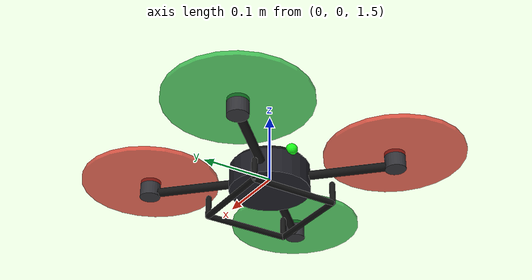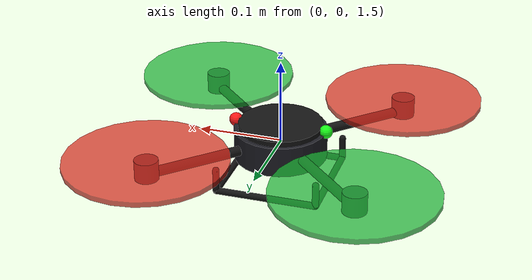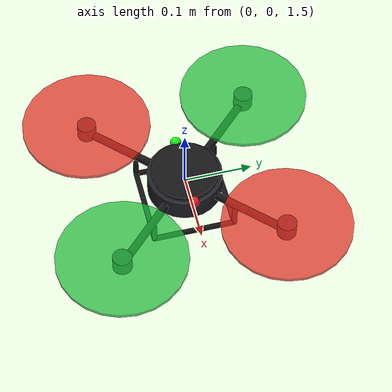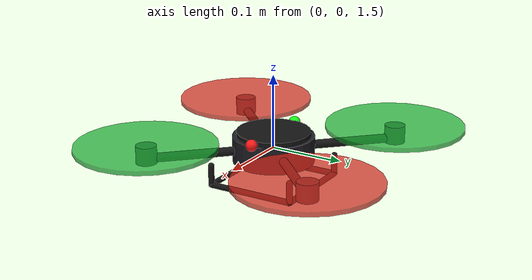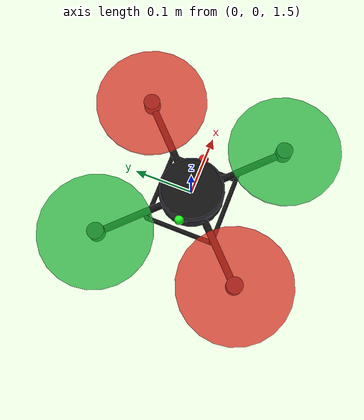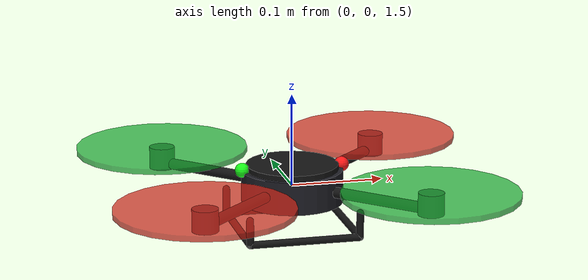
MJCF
<!--
hummingbird.xml — Hummingbird 四旋翼 MuJoCo 模型（真实外观版）

X 型机架，碳纤维臂，电机座，旋翼圆盘
物理参数与 RotorPy 一致：
    mass=0.5kg, Ixx=0.00365, Iyy=0.00368, Izz=0.00703
    k_eta=5.57e-6, k_m=1.36e-7, arm=0.1202m
-->

<mujoco model="hummingbird">

  <compiler angle="radian" autolimits="true"/>

  <option gravity="0 0 -9.81" timestep="0.001" integrator="RK4"/>

  <asset>
    <material name="carbon"    rgba="0.08 0.08 0.08 1"/>
    <material name="body_mat"  rgba="0.12 0.12 0.15 1"/>
    <material name="motor_mat" rgba="0.20 0.20 0.22 1"/>
    <material name="prop_cw"   rgba="0.85 0.15 0.10 0.75"/>
    <material name="prop_ccw"  rgba="0.10 0.70 0.20 0.75"/>
    <material name="led_red"   rgba="1.0  0.1  0.1  1"/>
    <material name="led_green" rgba="0.1  1.0  0.1  1"/>
    <texture type="skybox" file="asset/desert.png" gridsize="3 4" gridlayout=".U..LFRB.D.." />
    <texture name="plane" type="2d" builtin="checker" rgb1=".1 .1 .1" rgb2=".9 .9 .9" width="512" height="512" mark="cross" markrgb=".8 .8 .8" />
    <material name="plane" reflectance="0.3" texture="plane" texrepeat="1 1" texuniform="true" />
  </asset>

  <default>
    <joint damping="0.0005"/>
  </default>

  <worldbody>

    <body name="quadrotor" pos="0 0 1.5">
      <freejoint name="root"/>

      <!-- ── 机体中心（扁平六边形近似） ── -->
      <geom name="body_center" type="cylinder"
            size="0.055 0.018"
            mass="0.328"
            material="body_mat"/>

      <!-- 顶盖（薄圆盘，深色） -->
      <geom name="body_top" type="cylinder"
            size="0.050 0.004" pos="0 0 0.020"
            mass="0.01"
            material="carbon"/>

      <!-- ── 4 根碳纤维臂（X 型，45°布局）── -->
      <!-- M1 右前 (+x+y) -->
      <geom name="arm1" type="capsule" size="0.006"
            fromto="0 0 0  0.1202 0.1202 0"
            mass="0.012" material="carbon"/>
      <!-- M2 右后 (+x-y) -->
      <geom name="arm2" type="capsule" size="0.006"
            fromto="0 0 0  0.1202 -0.1202 0"
            mass="0.012" material="carbon"/>
      <!-- M3 左后 (-x-y) -->
      <geom name="arm3" type="capsule" size="0.006"
            fromto="0 0 0  -0.1202 -0.1202 0"
            mass="0.012" material="carbon"/>
      <!-- M4 左前 (-x+y) -->
      <geom name="arm4" type="capsule" size="0.006"
            fromto="0 0 0  -0.1202 0.1202 0"
            mass="0.012" material="carbon"/>

      <!-- ── 4 个电机座 ── -->
      <geom name="motor1" type="cylinder" size="0.014 0.012"
            pos="0.1202  0.1202 0.006"
            mass="0.015" material="motor_mat"/>
      <geom name="motor2" type="cylinder" size="0.014 0.012"
            pos="0.1202 -0.1202 0.006"
            mass="0.015" material="motor_mat"/>
      <geom name="motor3" type="cylinder" size="0.014 0.012"
            pos="-0.1202 -0.1202 0.006"
            mass="0.015" material="motor_mat"/>
      <geom name="motor4" type="cylinder" size="0.014 0.012"
            pos="-0.1202  0.1202 0.006"
            mass="0.015" material="motor_mat"/>

      <!-- ── 4 个旋翼圆盘（CW红色，CCW绿色）── -->
      <!-- M1 顺时针(CW) 红色 -->
      <geom name="rotor1" type="cylinder" size="0.095 0.003"
            pos="0.1202  0.1202 0.016"
            mass="0.008" material="prop_cw"/>
      <!-- M2 逆时针(CCW) 绿色 -->
      <geom name="rotor2" type="cylinder" size="0.095 0.003"
            pos="0.1202 -0.1202 0.016"
            mass="0.008" material="prop_ccw"/>
      <!-- M3 顺时针(CW) 红色 -->
      <geom name="rotor3" type="cylinder" size="0.095 0.003"
            pos="-0.1202 -0.1202 0.016"
            mass="0.008" material="prop_cw"/>
      <!-- M4 逆时针(CCW) 绿色 -->
      <geom name="rotor4" type="cylinder" size="0.095 0.003"
            pos="-0.1202  0.1202 0.016"
            mass="0.008" material="prop_ccw"/>

      <!-- ── 起落架（4根细支柱）── -->
      <geom name="leg1" type="capsule" size="0.004"
            fromto="0.06  0.06 -0.018   0.06  0.06 -0.045"
            mass="0.003" material="carbon"/>
      <geom name="leg2" type="capsule" size="0.004"
            fromto="0.06 -0.06 -0.018   0.06 -0.06 -0.045"
            mass="0.003" material="carbon"/>
      <geom name="leg3" type="capsule" size="0.004"
            fromto="-0.06 -0.06 -0.018  -0.06 -0.06 -0.045"
            mass="0.003" material="carbon"/>
      <geom name="leg4" type="capsule" size="0.004"
            fromto="-0.06  0.06 -0.018  -0.06  0.06 -0.045"
            mass="0.003" material="carbon"/>
      <!-- 起落架横杆 -->
      <geom name="skid1" type="capsule" size="0.004"
            fromto="0.06 -0.06 -0.045   0.06  0.06 -0.045"
            mass="0.002" material="carbon"/>
      <geom name="skid2" type="capsule" size="0.004"
            fromto="-0.06 -0.06 -0.045  -0.06  0.06 -0.045"
            mass="0.002" material="carbon"/>
      <geom name="skid3" type="capsule" size="0.004"
            fromto="0.06  0.06 -0.045  -0.06  0.06 -0.045"
            mass="0.002" material="carbon"/>
      <geom name="skid4" type="capsule" size="0.004"
            fromto="0.06 -0.06 -0.045  -0.06 -0.06 -0.045"
            mass="0.002" material="carbon"/>

      <!-- ── LED 指示灯（前红后绿，方便判断朝向）── -->
      <geom name="led_front" type="sphere" size="0.008"
            pos="0.055 0 0.020"
            mass="0.001" material="led_red"/>
      <geom name="led_back" type="sphere" size="0.008"
            pos="-0.055 0 0.020"
            mass="0.001" material="led_green"/>

      <!-- IMU 位置 -->
      <site name="imu" pos="0 0 0" size="0.005"/>

    </body>

    <!-- 地面 -->
    <geom name="floor" type="plane" material="plane" size="30 30 0.1"
          pos="0 0 0" rgba="0.75 0.75 0.75 1"
          friction="0.5 0.1 0.1"/>

  </worldbody>

  <sensor>
    <framepos    name="pos"   objtype="body" objname="quadrotor"/>
    <framequat   name="quat"  objtype="body" objname="quadrotor"/>
    <framelinvel name="vel"   objtype="body" objname="quadrotor"/>
    <frameangvel name="omega" objtype="body" objname="quadrotor"
                 reftype="body" refname="quadrotor"/>
    <accelerometer name="accel" site="imu"/>
    <gyro          name="gyro"  site="imu"/>
  </sensor>

</mujoco>
